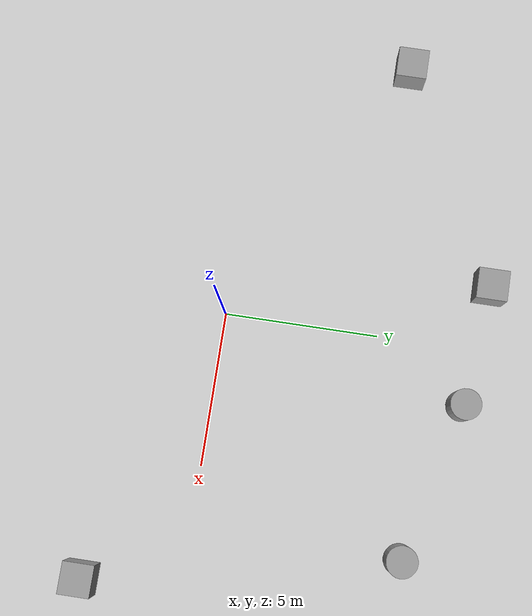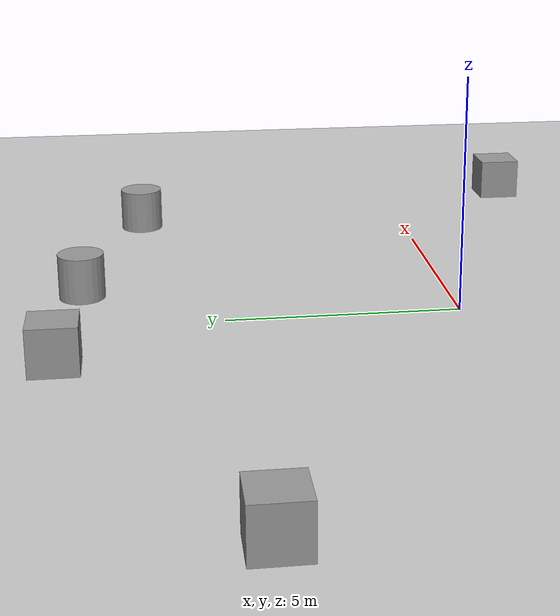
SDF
<sdf version="1.6">
 <world name="default">
  <light name="sun" type="directional">
   <pose>0 0 10 0 -0 0</pose>
   <diffuse>0.8 0.8 0.8 1</diffuse>
   <specular>0.2 0.2 0.2 1</specular>
   <attenuation>
    <range>1000</range>
    <constant>0.9</constant>
    <linear>0.01</linear>
    <quadratic>0.001</quadratic>
   </attenuation>
   <direction>0.5 0.1 -0.9</direction>
  </light>
  <model name="ground_plane">
   <static>1</static>
   <link name="link">
    <collision name="collision">
     <geometry><plane><normal>0 0 1</normal><size>100 100</size></plane></geometry>
     <surface><friction><ode><mu>100</mu><mu2>50</mu2></ode></friction></surface>
    </collision>
    <visual name="visual">
     <cast_shadows>0</cast_shadows>
     <geometry><plane><normal>0 0 1</normal><size>100 100</size></plane></geometry>
     <material>
      <script><uri>file://media/materials/scripts/gazebo.material</uri><name>Gazebo/Grey</name></script>
     </material>
    </visual>
    <velocity_decay><linear>0</linear><angular>0</angular></velocity_decay>
   </link>
  </model>
  <physics name="default_physics" default="0" type="ode">
   <max_step_size>0.01</max_step_size>
   <real_time_factor>1</real_time_factor>
   <real_time_update_rate>100</real_time_update_rate>
  </physics>
  <scene><ambient>0.4 0.4 0.4 1</ambient><background>0.7 0.7 0.7 1</background><shadows>1</shadows></scene>
  <model name="unit_box_1">
   <pose>8.93504 -3.13696 0.5 0 -0 0</pose>
   <link name="link">
    <inertial>
     <mass>1</mass>
     <inertia><ixx>1</ixx><ixy>0</ixy><ixz>0</ixz><iyy>1</iyy><iyz>0</iyz><izz>1</izz></inertia>
    </inertial>
    <collision name="collision"><geometry><box><size>1 1 1</size></box></geometry></collision>
    <visual name="visual">
     <geometry><box><size>1 1 1</size></box></geometry>
     <material>
      <script><uri>file://media/materials/scripts/gazebo.material</uri><name>Gazebo/Grey</name></script>
     </material>
    </visual>
    <velocity_decay><linear>0</linear><angular>0</angular></velocity_decay>
   </link>
   <static>0</static>
  </model>
  <model name="unit_box_3">
   <pose>-9.10751 4.88296 0.5 0 -0 0</pose>
   <link name="link">
    <inertial>
     <mass>1</mass>
     <inertia><ixx>1</ixx><ixy>0</ixy><ixz>0</ixz><iyy>1</iyy><iyz>0</iyz><izz>1</izz></inertia>
    </inertial>
    <collision name="collision"><geometry><box><size>1 1 1</size></box></geometry></collision>
    <visual name="visual">
     <geometry><box><size>1 1 1</size></box></geometry>
     <material>
      <script><uri>file://media/materials/scripts/gazebo.material</uri><name>Gazebo/Grey</name></script>
     </material>
    </visual>
    <velocity_decay><linear>0</linear><angular>0</angular></velocity_decay>
   </link>
   <static>0</static>
  </model>
  <model name="unit_box_4">
   <pose>-2.07073 8.39197 0.5 0 -0 0</pose>
   <link name="link">
    <inertial>
     <mass>1</mass>
     <inertia><ixx>1</ixx><ixy>0</ixy><ixz>0</ixz><iyy>1</iyy><iyz>0</iyz><izz>1</izz></inertia>
    </inertial>
    <collision name="collision"><geometry><box><size>1 1 1</size></box></geometry></collision>
    <visual name="visual">
     <geometry><box><size>1 1 1</size></box></geometry>
     <material>
      <script><uri>file://media/materials/scripts/gazebo.material</uri><name>Gazebo/Grey</name></script>
     </material>
    </visual>
    <velocity_decay><linear>0</linear><angular>0</angular></velocity_decay>
   </link>
   <static>0</static>
  </model>
  <model name="unit_cylinder_1">
   <pose>6.94045 6.6391 0.49912 0 0 -1e-06</pose>
   <link name="link">
    <inertial>
     <mass>1</mass>
     <inertia><ixx>1</ixx><ixy>0</ixy><ixz>0</ixz><iyy>1</iyy><iyz>0</iyz><izz>1</izz></inertia>
    </inertial>
    <collision name="collision">
     <geometry><cylinder><radius>0.5</radius><length>1</length></cylinder></geometry>
    </collision>
    <visual name="visual">
     <geometry><cylinder><radius>0.5</radius><length>1</length></cylinder></geometry>
     <material>
      <script><uri>file://media/materials/scripts/gazebo.material</uri><name>Gazebo/Grey</name></script>
     </material>
    </visual>
    <velocity_decay><linear>0</linear><angular>0</angular></velocity_decay>
   </link>
   <static>0</static>
  </model>
  <model name="unit_cylinder_2">
   <pose>1.85974 7.99299 0.49912 0 -0 0</pose>
   <link name="link">
    <inertial>
     <mass>1</mass>
     <inertia><ixx>1</ixx><ixy>0</ixy><ixz>0</ixz><iyy>1</iyy><iyz>0</iyz><izz>1</izz></inertia>
    </inertial>
    <collision name="collision">
     <geometry><cylinder><radius>0.5</radius><length>1</length></cylinder></geometry>
    </collision>
    <visual name="visual">
     <geometry><cylinder><radius>0.5</radius><length>1</length></cylinder></geometry>
     <material>
      <script><uri>file://media/materials/scripts/gazebo.material</uri><name>Gazebo/Grey</name></script>
     </material>
    </visual>
    <velocity_decay><linear>0</linear><angular>0</angular></velocity_decay>
   </link>
   <static>0</static>
  </model>
  <gravity>0 0 -9.8</gravity>
  <magnetic_field>6e-06 2.3e-05 -4.2e-05</magnetic_field>
  <atmosphere type="adiabatic"/>
  <spherical_coordinates>
   <surface_model>EARTH_WGS84</surface_model>
   <latitude_deg>0</latitude_deg>
   <longitude_deg>0</longitude_deg>
   <elevation>0</elevation>
   <heading_deg>0</heading_deg>
  </spherical_coordinates>
 </world>
</sdf>
